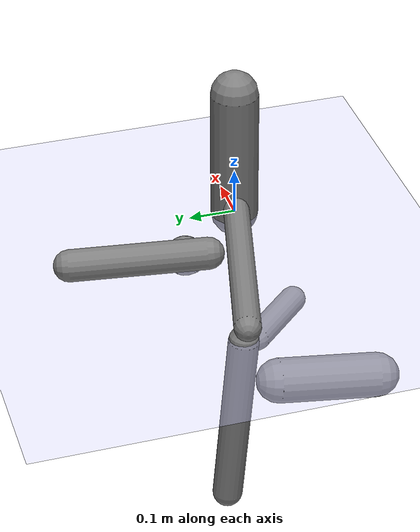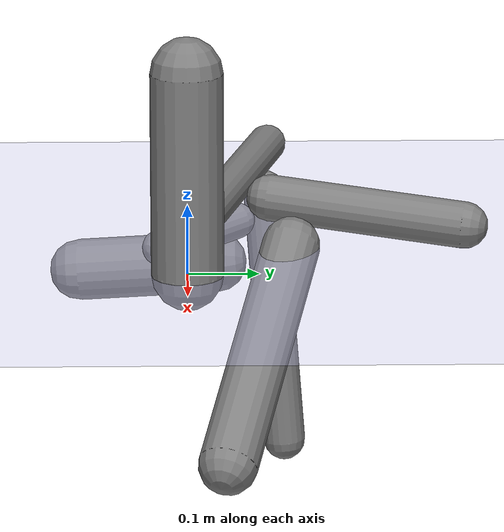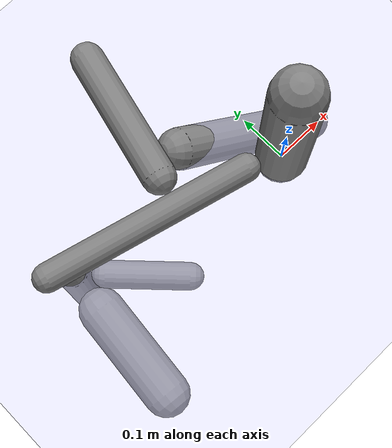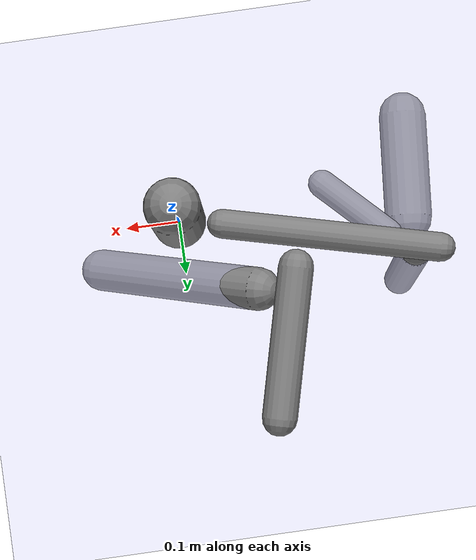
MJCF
<?xml version='1.0' encoding='UTF-8'?>
<mujoco model="robot_model">
  <worldbody>
    <light name="light" pos="0 -3 10" dir="0 0.5 -1" diffuse=".8 .8 .8" specular="0.1 0.1 0.1"/>
    <geom name="floor" type="plane" size="10.0 10.0 0.1" pos="0 0 0" rgba="0.8 0.8 1 1" contype="2" conaffinity="1"/>
    <body name="limb0" pos="0 0 0">
      <geom name="limb0_geom" type="capsule" fromto="0 0 0 0 0 0.28945919196017117" size="0.05099314359860009" density="868.3824486052863" contype="1" conaffinity="2"/>
      <site type="sphere" size="0.01" name="limb0_site0" pos="-0.08027686168298451 0.020192644282013252 0.05452443546231551" quat="0.7071067811865476 -0.17249074545559395 -0.6857455378871767 0.0"/>
      <freejoint name="limb0_root"/>
      <body name="limb1" pos="-0.08027686168298451 0.020192644282013252 0.05452443546231551" quat="0.7071067811865476 -0.17249074545559395 -0.6857455378871767 0.0">
        <geom name="limb1_geom" type="capsule" fromto="0 0 0 0 0 0.4119779083954327" size="0.027784373909289378" density="1094.7449235337838" contype="1" conaffinity="2"/>
        <site type="sphere" size="0.01" name="limb1_site0" pos="-0.059667369828490864 0.02027872306288459 0.3707577856502461" quat="0.7071067811865476 -0.2275373039935 -0.6694974049922594 0.0"/>
        <site type="sphere" size="0.01" name="limb1_site1" pos="0.011162896294215997 0.06465935805257647 0.14662549990165907" quat="0.7071067811865476 -0.6967989329630775 0.12029649629775836 0.0"/>
        <body name="limb2" pos="-0.059667369828490864 0.02027872306288459 0.3707577856502461" quat="0.7071067811865476 -0.2275373039935 -0.6694974049922594 0.0">
          <geom name="limb2_geom" type="capsule" fromto="0 0 0 0 0 0.39228239834336115" size="0.031234842456126257" density="854.5538514341013" contype="1" conaffinity="2"/>
          <site type="sphere" size="0.01" name="limb2_site0" pos="-0.037638081681156246 -0.07202399338113988 0.10617060175419196" quat="0.7071067811865476 0.6266946826244069 -0.32749622100154663 0.0"/>
          <site type="sphere" size="0.01" name="limb2_site1" pos="-0.06060506820155457 -0.01323971578821342 0.029985682452816506" quat="0.7071067811865476 0.15091458538187963 -0.6908145828795272 0.0"/>
          <body name="limb3" pos="-0.037638081681156246 -0.07202399338113988 0.10617060175419196" quat="0.7071067811865476 0.6266946826244069 -0.32749622100154663 0.0">
            <geom name="limb3_geom" type="capsule" fromto="0 0 0 0 0 0.20587440072907823" size="0.04603065339053593" density="1089.820416514438" contype="1" conaffinity="2"/>
            <joint name="joint_limb2_limb3_0" type="hinge" axis="1 0 0" range="-76.8184141901732 76.8184141901732" damping="5.0"/>
          </body>
          <body name="limb4" pos="-0.06060506820155457 -0.01323971578821342 0.029985682452816506" quat="0.7071067811865476 0.15091458538187963 -0.6908145828795272 0.0">
            <geom name="limb4_geom" type="capsule" fromto="0 0 0 0 0 0.15992621835018483" size="0.02679953805877651" density="497.521777068245" contype="1" conaffinity="2"/>
            <joint name="joint_limb2_limb4_0" type="hinge" axis="0 0 1" range="-36.57311519522722 36.57311519522722" damping="5.0"/>
          </body>
          <joint name="joint_limb1_limb2_0" type="hinge" axis="1 0 0" range="-60.6612845033848 60.6612845033848" damping="5.0"/>
        </body>
        <body name="limb5" pos="0.011162896294215997 0.06465935805257647 0.14662549990165907" quat="0.7071067811865476 -0.6967989329630775 0.12029649629775836 0.0">
          <geom name="limb5_geom" type="capsule" fromto="0 0 0 0 0 0.2855394311816916" size="0.033831499455672445" density="724.3680355454759" contype="1" conaffinity="2"/>
          <site type="sphere" size="0.01" name="limb5_site0" pos="-0.0337956363173895 0.0719680373341118 0.04943847533717704" quat="0.7071067811865476 -0.6400488154772292 -0.30056199661000993 0.0"/>
          <body name="limb6" pos="-0.0337956363173895 0.0719680373341118 0.04943847533717704" quat="0.7071067811865476 -0.6400488154772292 -0.30056199661000993 0.0">
            <geom name="limb6_geom" type="capsule" fromto="0 0 0 0 0 0.3881159878592387" size="0.041676634919505594" density="435.884228866186" contype="1" conaffinity="2"/>
            <joint name="joint_limb5_limb6_0" type="hinge" axis="0 0 1" range="-66.65366967925877 66.65366967925877" damping="5.0"/>
          </body>
          <joint name="joint_limb1_limb5_0" type="hinge" axis="1 0 0" range="-48.18281063347258 48.18281063347258" damping="5.0"/>
        </body>
        <joint name="joint_limb0_limb1_0" type="hinge" axis="0 1 0" range="-59.11804391420195 59.11804391420195" damping="5.0"/>
      </body>
    </body>
  </worldbody>
  <actuator>
    <position name="position_actuator_joint_limb0_limb1_0" joint="joint_limb0_limb1_0" gear="1.6172876921323367" inheritrange="1" forcerange="-5.960783523172352 5.960783523172352" forcelimited="true" kp="100.0"/>
    <position name="position_actuator_joint_limb1_limb2_0" joint="joint_limb1_limb2_0" gear="0.9597608262960533" inheritrange="1" forcerange="-5.682722942176081 5.682722942176081" forcelimited="true" kp="100.0"/>
    <position name="position_actuator_joint_limb2_limb3_0" joint="joint_limb2_limb3_0" gear="1.4426881968183625" inheritrange="1" forcerange="-9.693587687008968 9.693587687008968" forcelimited="true" kp="100.0"/>
    <position name="position_actuator_joint_limb2_limb4_0" joint="joint_limb2_limb4_0" gear="1.7107518951402347" inheritrange="1" forcerange="-1.0982122289866472 1.0982122289866472" forcelimited="true" kp="100.0"/>
    <position name="position_actuator_joint_limb1_limb5_0" joint="joint_limb1_limb5_0" gear="1.8903065910928873" inheritrange="1" forcerange="-4.306135345230845 4.306135345230845" forcelimited="true" kp="100.0"/>
    <position name="position_actuator_joint_limb5_limb6_0" joint="joint_limb5_limb6_0" gear="1.3541690304906457" inheritrange="1" forcerange="-5.276560333664183 5.276560333664183" forcelimited="true" kp="100.0"/>
  </actuator>
  <contact>
    <pair geom1="limb0_geom" geom2="limb1_geom"/>
    <pair geom1="limb1_geom" geom2="limb2_geom"/>
    <pair geom1="limb2_geom" geom2="limb3_geom"/>
    <pair geom1="limb2_geom" geom2="limb4_geom"/>
    <pair geom1="limb1_geom" geom2="limb5_geom"/>
    <pair geom1="limb5_geom" geom2="limb6_geom"/>
  </contact>
</mujoco>
